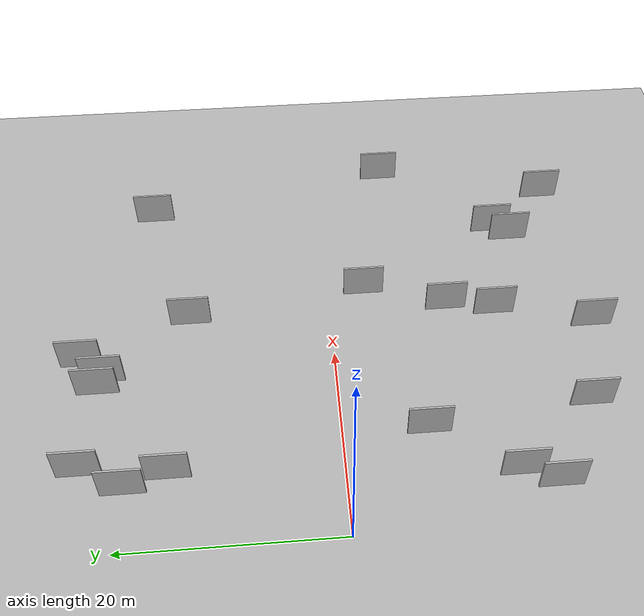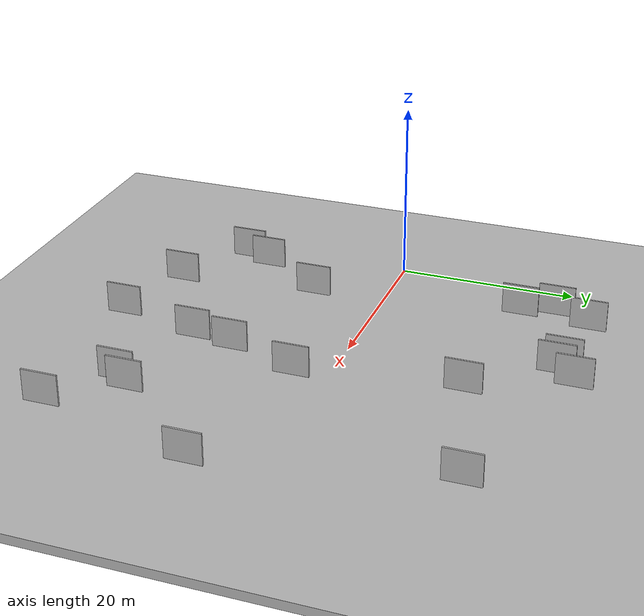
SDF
<?xml version="1.0" encoding="utf-8"?>

<sdf version="1.6">

   <world name="default">

      <gui fullscreen="0">

         <camera name="user_camera">

            <pose>-15 0 4.57585 0 0 0</pose>

            <view_controller>orbit</view_controller>

         </camera>

      </gui>

      <scene>

         <sky>

           <clouds>

             <speed>12</speed>

           </clouds>

         </sky>

         <ambient>0.4 0.4 0.4 1</ambient>

         <background>0.7 0.7 0.7 1</background>

         <shadows>1</shadows>

      </scene>

      <gravity>0 0 -9.8066</gravity>

      <magnetic_field>6e-06 2.3e-05 -4.2e-05</magnetic_field>

      <physics default="0" name="default_physics" type="ode">

         <ode>

            <solver>

               <type>quick</type>

               <iters>10</iters>

               <sor>1.0</sor>

               <use_dynamic_moi_rescaling>0</use_dynamic_moi_rescaling>

            </solver>

            <constraints>

               <cfm>0</cfm>

               <erp>0.2</erp>

               <contact_max_correcting_vel>100</contact_max_correcting_vel>

               <contact_surface_layer>0.001</contact_surface_layer>

            </constraints>

         </ode>

         <max_step_size>0.004</max_step_size>

         <real_time_factor>1</real_time_factor>

         <real_time_update_rate>250</real_time_update_rate>

      </physics>

      <light name="sun" type="directional">

         <cast_shadows>1</cast_shadows>

         <pose>0 0 10 0 0 0</pose>

         <diffuse>0.8 0.8 0.8 1</diffuse>

         <specular>0.2 0.2 0.2 1</specular>

         <attenuation>

            <range>1000</range>

            <constant>0.9</constant>

            <linear>0.01</linear>

            <quadratic>0.001</quadratic>

         </attenuation>

         <direction>-0.5 0.1 -0.9</direction>

      </light>

      <include>

         <name>ground_plane_1</name>

         <uri>model://HANNAS_ground_plane</uri>

         <pose>0 0 0  0 0 0</pose>

      </include>

      <include>

         <name>ground_plane_2</name>

         <uri>model://HANNAS_ground_plane</uri>

         <pose>100 0 0  0 0 0</pose>

      </include>

      <model name="HANNAS_wall_1">

         <static>1</static>

         <pose frame="">7.7122 23.1605 0.0 0.000000 0.000000 1.570796</pose>

         <link name="link">

            <pose frame="">0 0 2.00 0 0 0</pose>

            <collision name="collision">

               <geometry>

                  <box>

                     <size>4.00 0.2 4.00</size>

                  </box>

               </geometry>

               <max_contacts>10</max_contacts>

               <surface>

                  <contact>

                     <ode/>

                  </contact>

                  <bounce/>

                  <friction>

                     <torsional>

                        <ode/>

                     </torsional>

                     <ode/>

                  </friction>

               </surface>

            </collision>

            <visual name="visual">

               <cast_shadows>0</cast_shadows>

               <geometry>

                  <box>

                     <size>4.00 0.2 4.00</size>

                  </box>

               </geometry>

               <material>

                  <script>

                     <uri>model://HANNAS_wall/materials/scripts</uri>

                     <uri>model://HANNAS_wall/materials/textures</uri>

                     <name>vrc/HANNAS_wall</name>

                  </script>

               </material>

            </visual>

            <self_collide>0</self_collide>

            <enable_wind>0</enable_wind>

            <kinematic>0</kinematic>

         </link>

      </model>

      <model name="HANNAS_wall_2">

         <static>1</static>

         <pose frame="">4.7419 -15.2360 0.0 0.000000 0.000000 1.570796</pose>

         <link name="link">

            <pose frame="">0 0 2.00 0 0 0</pose>

            <collision name="collision">

               <geometry>

                  <box>

                     <size>4.00 0.2 4.00</size>

                  </box>

               </geometry>

               <max_contacts>10</max_contacts>

               <surface>

                  <contact>

                     <ode/>

                  </contact>

                  <bounce/>

                  <friction>

                     <torsional>

                        <ode/>

                     </torsional>

                     <ode/>

                  </friction>

               </surface>

            </collision>

            <visual name="visual">

               <cast_shadows>0</cast_shadows>

               <geometry>

                  <box>

                     <size>4.00 0.2 4.00</size>

                  </box>

               </geometry>

               <material>

                  <script>

                     <uri>model://HANNAS_wall/materials/scripts</uri>

                     <uri>model://HANNAS_wall/materials/textures</uri>

                     <name>vrc/HANNAS_wall</name>

                  </script>

               </material>

            </visual>

            <self_collide>0</self_collide>

            <enable_wind>0</enable_wind>

            <kinematic>0</kinematic>

         </link>

      </model>

      <model name="HANNAS_wall_3">

         <static>1</static>

         <pose frame="">18.1032 21.8950 0.0 0.000000 0.000000 1.570796</pose>

         <link name="link">

            <pose frame="">0 0 2.00 0 0 0</pose>

            <collision name="collision">

               <geometry>

                  <box>

                     <size>4.00 0.2 4.00</size>

                  </box>

               </geometry>

               <max_contacts>10</max_contacts>

               <surface>

                  <contact>

                     <ode/>

                  </contact>

                  <bounce/>

                  <friction>

                     <torsional>

                        <ode/>

                     </torsional>

                     <ode/>

                  </friction>

               </surface>

            </collision>

            <visual name="visual">

               <cast_shadows>0</cast_shadows>

               <geometry>

                  <box>

                     <size>4.00 0.2 4.00</size>

                  </box>

               </geometry>

               <material>

                  <script>

                     <uri>model://HANNAS_wall/materials/scripts</uri>

                     <uri>model://HANNAS_wall/materials/textures</uri>

                     <name>vrc/HANNAS_wall</name>

                  </script>

               </material>

            </visual>

            <self_collide>0</self_collide>

            <enable_wind>0</enable_wind>

            <kinematic>0</kinematic>

         </link>

      </model>

      <model name="HANNAS_wall_4">

         <static>1</static>

         <pose frame="">23.8104 -16.2728 0.0 0.000000 0.000000 1.570796</pose>

         <link name="link">

            <pose frame="">0 0 2.00 0 0 0</pose>

            <collision name="collision">

               <geometry>

                  <box>

                     <size>4.00 0.2 4.00</size>

                  </box>

               </geometry>

               <max_contacts>10</max_contacts>

               <surface>

                  <contact>

                     <ode/>

                  </contact>

                  <bounce/>

                  <friction>

                     <torsional>

                        <ode/>

                     </torsional>

                     <ode/>

                  </friction>

               </surface>

            </collision>

            <visual name="visual">

               <cast_shadows>0</cast_shadows>

               <geometry>

                  <box>

                     <size>4.00 0.2 4.00</size>

                  </box>

               </geometry>

               <material>

                  <script>

                     <uri>model://HANNAS_wall/materials/scripts</uri>

                     <uri>model://HANNAS_wall/materials/textures</uri>

                     <name>vrc/HANNAS_wall</name>

                  </script>

               </material>

            </visual>

            <self_collide>0</self_collide>

            <enable_wind>0</enable_wind>

            <kinematic>0</kinematic>

         </link>

      </model>

      <model name="HANNAS_wall_5">

         <static>1</static>

         <pose frame="">16.6806 22.3600 0.0 0.000000 0.000000 1.570796</pose>

         <link name="link">

            <pose frame="">0 0 2.00 0 0 0</pose>

            <collision name="collision">

               <geometry>

                  <box>

                     <size>4.00 0.2 4.00</size>

                  </box>

               </geometry>

               <max_contacts>10</max_contacts>

               <surface>

                  <contact>

                     <ode/>

                  </contact>

                  <bounce/>

                  <friction>

                     <torsional>

                        <ode/>

                     </torsional>

                     <ode/>

                  </friction>

               </surface>

            </collision>

            <visual name="visual">

               <cast_shadows>0</cast_shadows>

               <geometry>

                  <box>

                     <size>4.00 0.2 4.00</size>

                  </box>

               </geometry>

               <material>

                  <script>

                     <uri>model://HANNAS_wall/materials/scripts</uri>

                     <uri>model://HANNAS_wall/materials/textures</uri>

                     <name>vrc/HANNAS_wall</name>

                  </script>

               </material>

            </visual>

            <self_collide>0</self_collide>

            <enable_wind>0</enable_wind>

            <kinematic>0</kinematic>

         </link>

      </model>

      <model name="HANNAS_wall_6">

         <static>1</static>

         <pose frame="">3.3004 -18.2624 0.0 0.000000 0.000000 1.570796</pose>

         <link name="link">

            <pose frame="">0 0 2.00 0 0 0</pose>

            <collision name="collision">

               <geometry>

                  <box>

                     <size>4.00 0.2 4.00</size>

                  </box>

               </geometry>

               <max_contacts>10</max_contacts>

               <surface>

                  <contact>

                     <ode/>

                  </contact>

                  <bounce/>

                  <friction>

                     <torsional>

                        <ode/>

                     </torsional>

                     <ode/>

                  </friction>

               </surface>

            </collision>

            <visual name="visual">

               <cast_shadows>0</cast_shadows>

               <geometry>

                  <box>

                     <size>4.00 0.2 4.00</size>

                  </box>

               </geometry>

               <material>

                  <script>

                     <uri>model://HANNAS_wall/materials/scripts</uri>

                     <uri>model://HANNAS_wall/materials/textures</uri>

                     <name>vrc/HANNAS_wall</name>

                  </script>

               </material>

            </visual>

            <self_collide>0</self_collide>

            <enable_wind>0</enable_wind>

            <kinematic>0</kinematic>

         </link>

      </model>

      <model name="HANNAS_wall_7">

         <static>1</static>

         <pose frame="">36.0128 -18.1680 0.0 0.000000 0.000000 1.570796</pose>

         <link name="link">

            <pose frame="">0 0 2.00 0 0 0</pose>

            <collision name="collision">

               <geometry>

                  <box>

                     <size>4.00 0.2 4.00</size>

                  </box>

               </geometry>

               <max_contacts>10</max_contacts>

               <surface>

                  <contact>

                     <ode/>

                  </contact>

                  <bounce/>

                  <friction>

                     <torsional>

                        <ode/>

                     </torsional>

                     <ode/>

                  </friction>

               </surface>

            </collision>

            <visual name="visual">

               <cast_shadows>0</cast_shadows>

               <geometry>

                  <box>

                     <size>4.00 0.2 4.00</size>

                  </box>

               </geometry>

               <material>

                  <script>

                     <uri>model://HANNAS_wall/materials/scripts</uri>

                     <uri>model://HANNAS_wall/materials/textures</uri>

                     <name>vrc/HANNAS_wall</name>

                  </script>

               </material>

            </visual>

            <self_collide>0</self_collide>

            <enable_wind>0</enable_wind>

            <kinematic>0</kinematic>

         </link>

      </model>

      <model name="HANNAS_wall_8">

         <static>1</static>

         <pose frame="">24.8156 -11.5471 0.0 0.000000 0.000000 1.570796</pose>

         <link name="link">

            <pose frame="">0 0 2.00 0 0 0</pose>

            <collision name="collision">

               <geometry>

                  <box>

                     <size>4.00 0.2 4.00</size>

                  </box>

               </geometry>

               <max_contacts>10</max_contacts>

               <surface>

                  <contact>

                     <ode/>

                  </contact>

                  <bounce/>

                  <friction>

                     <torsional>

                        <ode/>

                     </torsional>

                     <ode/>

                  </friction>

               </surface>

            </collision>

            <visual name="visual">

               <cast_shadows>0</cast_shadows>

               <geometry>

                  <box>

                     <size>4.00 0.2 4.00</size>

                  </box>

               </geometry>

               <material>

                  <script>

                     <uri>model://HANNAS_wall/materials/scripts</uri>

                     <uri>model://HANNAS_wall/materials/textures</uri>

                     <name>vrc/HANNAS_wall</name>

                  </script>

               </material>

            </visual>

            <self_collide>0</self_collide>

            <enable_wind>0</enable_wind>

            <kinematic>0</kinematic>

         </link>

      </model>

      <model name="HANNAS_wall_9">

         <static>1</static>

         <pose frame="">40.5498 18.1151 0.0 0.000000 0.000000 1.570796</pose>

         <link name="link">

            <pose frame="">0 0 2.00 0 0 0</pose>

            <collision name="collision">

               <geometry>

                  <box>

                     <size>4.00 0.2 4.00</size>

                  </box>

               </geometry>

               <max_contacts>10</max_contacts>

               <surface>

                  <contact>

                     <ode/>

                  </contact>

                  <bounce/>

                  <friction>

                     <torsional>

                        <ode/>

                     </torsional>

                     <ode/>

                  </friction>

               </surface>

            </collision>

            <visual name="visual">

               <cast_shadows>0</cast_shadows>

               <geometry>

                  <box>

                     <size>4.00 0.2 4.00</size>

                  </box>

               </geometry>

               <material>

                  <script>

                     <uri>model://HANNAS_wall/materials/scripts</uri>

                     <uri>model://HANNAS_wall/materials/textures</uri>

                     <name>vrc/HANNAS_wall</name>

                  </script>

               </material>

            </visual>

            <self_collide>0</self_collide>

            <enable_wind>0</enable_wind>

            <kinematic>0</kinematic>

         </link>

      </model>

      <model name="HANNAS_wall_10">

         <static>1</static>

         <pose frame="">45.9493 -7.0256 0.0 0.000000 0.000000 1.570796</pose>

         <link name="link">

            <pose frame="">0 0 2.00 0 0 0</pose>

            <collision name="collision">

               <geometry>

                  <box>

                     <size>4.00 0.2 4.00</size>

                  </box>

               </geometry>

               <max_contacts>10</max_contacts>

               <surface>

                  <contact>

                     <ode/>

                  </contact>

                  <bounce/>

                  <friction>

                     <torsional>

                        <ode/>

                     </torsional>

                     <ode/>

                  </friction>

               </surface>

            </collision>

            <visual name="visual">

               <cast_shadows>0</cast_shadows>

               <geometry>

                  <box>

                     <size>4.00 0.2 4.00</size>

                  </box>

               </geometry>

               <material>

                  <script>

                     <uri>model://HANNAS_wall/materials/scripts</uri>

                     <uri>model://HANNAS_wall/materials/textures</uri>

                     <name>vrc/HANNAS_wall</name>

                  </script>

               </material>

            </visual>

            <self_collide>0</self_collide>

            <enable_wind>0</enable_wind>

            <kinematic>0</kinematic>

         </link>

      </model>

      <model name="HANNAS_wall_11">

         <static>1</static>

         <pose frame="">24.8481 13.9159 0.0 0.000000 0.000000 1.570796</pose>

         <link name="link">

            <pose frame="">0 0 2.00 0 0 0</pose>

            <collision name="collision">

               <geometry>

                  <box>

                     <size>4.00 0.2 4.00</size>

                  </box>

               </geometry>

               <max_contacts>10</max_contacts>

               <surface>

                  <contact>

                     <ode/>

                  </contact>

                  <bounce/>

                  <friction>

                     <torsional>

                        <ode/>

                     </torsional>

                     <ode/>

                  </friction>

               </surface>

            </collision>

            <visual name="visual">

               <cast_shadows>0</cast_shadows>

               <geometry>

                  <box>

                     <size>4.00 0.2 4.00</size>

                  </box>

               </geometry>

               <material>

                  <script>

                     <uri>model://HANNAS_wall/materials/scripts</uri>

                     <uri>model://HANNAS_wall/materials/textures</uri>

                     <name>vrc/HANNAS_wall</name>

                  </script>

               </material>

            </visual>

            <self_collide>0</self_collide>

            <enable_wind>0</enable_wind>

            <kinematic>0</kinematic>

         </link>

      </model>

      <model name="HANNAS_wall_12">

         <static>1</static>

         <pose frame="">20.1964 24.1727 0.0 0.000000 0.000000 1.570796</pose>

         <link name="link">

            <pose frame="">0 0 2.00 0 0 0</pose>

            <collision name="collision">

               <geometry>

                  <box>

                     <size>4.00 0.2 4.00</size>

                  </box>

               </geometry>

               <max_contacts>10</max_contacts>

               <surface>

                  <contact>

                     <ode/>

                  </contact>

                  <bounce/>

                  <friction>

                     <torsional>

                        <ode/>

                     </torsional>

                     <ode/>

                  </friction>

               </surface>

            </collision>

            <visual name="visual">

               <cast_shadows>0</cast_shadows>

               <geometry>

                  <box>

                     <size>4.00 0.2 4.00</size>

                  </box>

               </geometry>

               <material>

                  <script>

                     <uri>model://HANNAS_wall/materials/scripts</uri>

                     <uri>model://HANNAS_wall/materials/textures</uri>

                     <name>vrc/HANNAS_wall</name>

                  </script>

               </material>

            </visual>

            <self_collide>0</self_collide>

            <enable_wind>0</enable_wind>

            <kinematic>0</kinematic>

         </link>

      </model>

      <model name="HANNAS_wall_13">

         <static>1</static>

         <pose frame="">21.3905 -25.6357 0.0 0.000000 0.000000 1.570796</pose>

         <link name="link">

            <pose frame="">0 0 2.00 0 0 0</pose>

            <collision name="collision">

               <geometry>

                  <box>

                     <size>4.00 0.2 4.00</size>

                  </box>

               </geometry>

               <max_contacts>10</max_contacts>

               <surface>

                  <contact>

                     <ode/>

                  </contact>

                  <bounce/>

                  <friction>

                     <torsional>

                        <ode/>

                     </torsional>

                     <ode/>

                  </friction>

               </surface>

            </collision>

            <visual name="visual">

               <cast_shadows>0</cast_shadows>

               <geometry>

                  <box>

                     <size>4.00 0.2 4.00</size>

                  </box>

               </geometry>

               <material>

                  <script>

                     <uri>model://HANNAS_wall/materials/scripts</uri>

                     <uri>model://HANNAS_wall/materials/textures</uri>

                     <name>vrc/HANNAS_wall</name>

                  </script>

               </material>

            </visual>

            <self_collide>0</self_collide>

            <enable_wind>0</enable_wind>

            <kinematic>0</kinematic>

         </link>

      </model>

      <model name="HANNAS_wall_14">

         <static>1</static>

         <pose frame="">9.7748 -7.7643 0.0 0.000000 0.000000 1.570796</pose>

         <link name="link">

            <pose frame="">0 0 2.00 0 0 0</pose>

            <collision name="collision">

               <geometry>

                  <box>

                     <size>4.00 0.2 4.00</size>

                  </box>

               </geometry>

               <max_contacts>10</max_contacts>

               <surface>

                  <contact>

                     <ode/>

                  </contact>

                  <bounce/>

                  <friction>

                     <torsional>

                        <ode/>

                     </torsional>

                     <ode/>

                  </friction>

               </surface>

            </collision>

            <visual name="visual">

               <cast_shadows>0</cast_shadows>

               <geometry>

                  <box>

                     <size>4.00 0.2 4.00</size>

                  </box>

               </geometry>

               <material>

                  <script>

                     <uri>model://HANNAS_wall/materials/scripts</uri>

                     <uri>model://HANNAS_wall/materials/textures</uri>

                     <name>vrc/HANNAS_wall</name>

                  </script>

               </material>

            </visual>

            <self_collide>0</self_collide>

            <enable_wind>0</enable_wind>

            <kinematic>0</kinematic>

         </link>

      </model>

      <model name="HANNAS_wall_15">

         <static>1</static>

         <pose frame="">5.5307 19.2282 0.0 0.000000 0.000000 1.570796</pose>

         <link name="link">

            <pose frame="">0 0 2.00 0 0 0</pose>

            <collision name="collision">

               <geometry>

                  <box>

                     <size>4.00 0.2 4.00</size>

                  </box>

               </geometry>

               <max_contacts>10</max_contacts>

               <surface>

                  <contact>

                     <ode/>

                  </contact>

                  <bounce/>

                  <friction>

                     <torsional>

                        <ode/>

                     </torsional>

                     <ode/>

                  </friction>

               </surface>

            </collision>

            <visual name="visual">

               <cast_shadows>0</cast_shadows>

               <geometry>

                  <box>

                     <size>4.00 0.2 4.00</size>

                  </box>

               </geometry>

               <material>

                  <script>

                     <uri>model://HANNAS_wall/materials/scripts</uri>

                     <uri>model://HANNAS_wall/materials/textures</uri>

                     <name>vrc/HANNAS_wall</name>

                  </script>

               </material>

            </visual>

            <self_collide>0</self_collide>

            <enable_wind>0</enable_wind>

            <kinematic>0</kinematic>

         </link>

      </model>

      <model name="HANNAS_wall_16">

         <static>1</static>

         <pose frame="">41.2693 -24.7019 0.0 0.000000 0.000000 1.570796</pose>

         <link name="link">

            <pose frame="">0 0 2.00 0 0 0</pose>

            <collision name="collision">

               <geometry>

                  <box>

                     <size>4.00 0.2 4.00</size>

                  </box>

               </geometry>

               <max_contacts>10</max_contacts>

               <surface>

                  <contact>

                     <ode/>

                  </contact>

                  <bounce/>

                  <friction>

                     <torsional>

                        <ode/>

                     </torsional>

                     <ode/>

                  </friction>

               </surface>

            </collision>

            <visual name="visual">

               <cast_shadows>0</cast_shadows>

               <geometry>

                  <box>

                     <size>4.00 0.2 4.00</size>

                  </box>

               </geometry>

               <material>

                  <script>

                     <uri>model://HANNAS_wall/materials/scripts</uri>

                     <uri>model://HANNAS_wall/materials/textures</uri>

                     <name>vrc/HANNAS_wall</name>

                  </script>

               </material>

            </visual>

            <self_collide>0</self_collide>

            <enable_wind>0</enable_wind>

            <kinematic>0</kinematic>

         </link>

      </model>

      <model name="HANNAS_wall_17">

         <static>1</static>

         <pose frame="">11.7072 -23.1073 0.0 0.000000 0.000000 1.570796</pose>

         <link name="link">

            <pose frame="">0 0 2.00 0 0 0</pose>

            <collision name="collision">

               <geometry>

                  <box>

                     <size>4.00 0.2 4.00</size>

                  </box>

               </geometry>

               <max_contacts>10</max_contacts>

               <surface>

                  <contact>

                     <ode/>

                  </contact>

                  <bounce/>

                  <friction>

                     <torsional>

                        <ode/>

                     </torsional>

                     <ode/>

                  </friction>

               </surface>

            </collision>

            <visual name="visual">

               <cast_shadows>0</cast_shadows>

               <geometry>

                  <box>

                     <size>4.00 0.2 4.00</size>

                  </box>

               </geometry>

               <material>

                  <script>

                     <uri>model://HANNAS_wall/materials/scripts</uri>

                     <uri>model://HANNAS_wall/materials/textures</uri>

                     <name>vrc/HANNAS_wall</name>

                  </script>

               </material>

            </visual>

            <self_collide>0</self_collide>

            <enable_wind>0</enable_wind>

            <kinematic>0</kinematic>

         </link>

      </model>

      <model name="HANNAS_wall_18">

         <static>1</static>

         <pose frame="">27.6421 -3.5285 0.0 0.000000 0.000000 1.570796</pose>

         <link name="link">

            <pose frame="">0 0 2.00 0 0 0</pose>

            <collision name="collision">

               <geometry>

                  <box>

                     <size>4.00 0.2 4.00</size>

                  </box>

               </geometry>

               <max_contacts>10</max_contacts>

               <surface>

                  <contact>

                     <ode/>

                  </contact>

                  <bounce/>

                  <friction>

                     <torsional>

                        <ode/>

                     </torsional>

                     <ode/>

                  </friction>

               </surface>

            </collision>

            <visual name="visual">

               <cast_shadows>0</cast_shadows>

               <geometry>

                  <box>

                     <size>4.00 0.2 4.00</size>

                  </box>

               </geometry>

               <material>

                  <script>

                     <uri>model://HANNAS_wall/materials/scripts</uri>

                     <uri>model://HANNAS_wall/materials/textures</uri>

                     <name>vrc/HANNAS_wall</name>

                  </script>

               </material>

            </visual>

            <self_collide>0</self_collide>

            <enable_wind>0</enable_wind>

            <kinematic>0</kinematic>

         </link>

      </model>

      <model name="HANNAS_wall_19">

         <static>1</static>

         <pose frame="">6.8189 15.4405 0.0 0.000000 0.000000 1.570796</pose>

         <link name="link">

            <pose frame="">0 0 2.00 0 0 0</pose>

            <collision name="collision">

               <geometry>

                  <box>

                     <size>4.00 0.2 4.00</size>

                  </box>

               </geometry>

               <max_contacts>10</max_contacts>

               <surface>

                  <contact>

                     <ode/>

                  </contact>

                  <bounce/>

                  <friction>

                     <torsional>

                        <ode/>

                     </torsional>

                     <ode/>

                  </friction>

               </surface>

            </collision>

            <visual name="visual">

               <cast_shadows>0</cast_shadows>

               <geometry>

                  <box>

                     <size>4.00 0.2 4.00</size>

                  </box>

               </geometry>

               <material>

                  <script>

                     <uri>model://HANNAS_wall/materials/scripts</uri>

                     <uri>model://HANNAS_wall/materials/textures</uri>

                     <name>vrc/HANNAS_wall</name>

                  </script>

               </material>

            </visual>

            <self_collide>0</self_collide>

            <enable_wind>0</enable_wind>

            <kinematic>0</kinematic>

         </link>

      </model>

      <model name="HANNAS_wall_20">

         <static>1</static>

         <pose frame="">34.5589 -19.8673 0.0 0.000000 0.000000 1.570796</pose>

         <link name="link">

            <pose frame="">0 0 2.00 0 0 0</pose>

            <collision name="collision">

               <geometry>

                  <box>

                     <size>4.00 0.2 4.00</size>

                  </box>

               </geometry>

               <max_contacts>10</max_contacts>

               <surface>

                  <contact>

                     <ode/>

                  </contact>

                  <bounce/>

                  <friction>

                     <torsional>

                        <ode/>

                     </torsional>

                     <ode/>

                  </friction>

               </surface>

            </collision>

            <visual name="visual">

               <cast_shadows>0</cast_shadows>

               <geometry>

                  <box>

                     <size>4.00 0.2 4.00</size>

                  </box>

               </geometry>

               <material>

                  <script>

                     <uri>model://HANNAS_wall/materials/scripts</uri>

                     <uri>model://HANNAS_wall/materials/textures</uri>

                     <name>vrc/HANNAS_wall</name>

                  </script>

               </material>

            </visual>

            <self_collide>0</self_collide>

            <enable_wind>0</enable_wind>

            <kinematic>0</kinematic>

         </link>

      </model>

   </world>

</sdf>

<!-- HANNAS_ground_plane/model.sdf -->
<sdf version="1.4">
<model name="HANNAS_ground_plane">
  <static>true</static>
    <link name="link">
      <collision name="collision">
        <geometry>
          <plane>
            <normal>0 0 1</normal>
            <size>1000 1000</size>
          </plane>
        </geometry>
        <surface>
          <friction>
            <ode>
              <mu>100</mu>
              <mu2>50</mu2>
            </ode>
          </friction>
        </surface>
      </collision>
      <visual name="visual">
        <cast_shadows>false</cast_shadows>
        <geometry>
          <plane>
            <normal>0 0 1</normal>
            <size>1000 1000</size>
          </plane>
        </geometry>
        <material>
          <script>
            <uri>model://HANNAS_ground_plane/materials/scripts/HANNAS_ground_plane.material</uri>
	    <uri>model://HANNAS_ground_plane/materials/textures</uri>
            <name>HANNASGroundPlane/Image</name>
          </script>
        </material>
      </visual>
    </link>
  </model>
</sdf>
